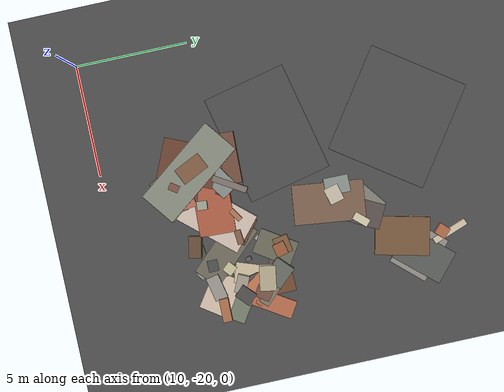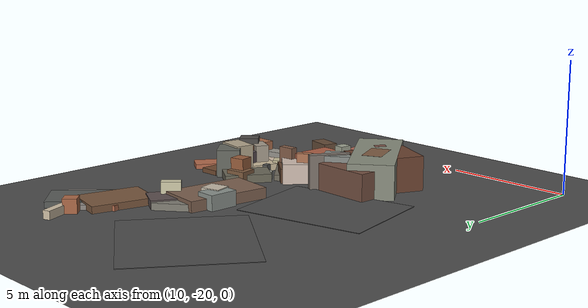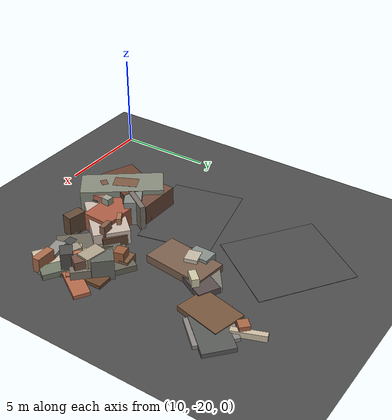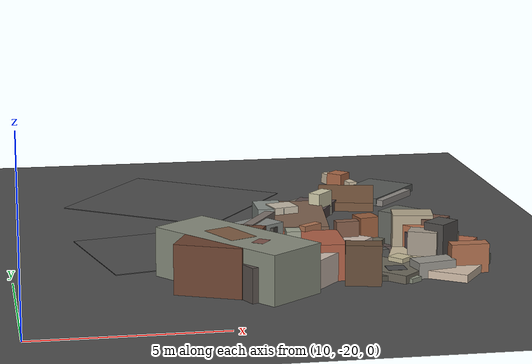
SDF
<sdf version="1.6">
 <world name="navitas_arena">
  <model name="ground_plane">
   <static>true</static>
   <link name="link">
    <collision name="collision">
     <geometry><plane><normal>0 0 1</normal><size>400 400</size></plane></geometry>
     <surface><friction><ode><mu>0.800</mu><mu2>0.800</mu2></ode></friction></surface>
    </collision>
    <visual name="visual">
     <cast_shadows>false</cast_shadows>
     <geometry><plane><normal>0 0 1</normal><size>400 400</size></plane></geometry>
     <material>
      <specular>0.04 0.04 0.04 1</specular>
      <script>
       <uri>file://media/materials/scripts/navitas_asphalt.material</uri>
       <name>Navitas/RealArenaAsphalt</name>
      </script>
     </material>
    </visual>
   </link>
  </model>
  <model name="road_orta_3_7">
   <static>true</static>
   <pose>14.708 -12.340 0.040 0 0 1.793</pose>
   <link name="link">
    <collision name="col"><geometry><box><size>3.812 5.000 0.020</size></box></geometry></collision>
    <visual name="vis">
     <geometry><box><size>3.812 5.000 0.020</size></box></geometry>
     <material>
      <specular>0.04 0.04 0.04 1</specular>
      <script>
       <uri>file://media/materials/scripts/navitas_asphalt.material</uri>
       <name>Navitas/RealArenaAsphalt</name>
      </script>
     </material>
    </visual>
   </link>
  </model>
  <model name="road_orta_3_9">
   <static>true</static>
   <pose>15.219 -6.500 0.040 0 0 0.958</pose>
   <link name="link">
    <collision name="col"><geometry><box><size>4.567 5.000 0.020</size></box></geometry></collision>
    <visual name="vis">
     <geometry><box><size>4.567 5.000 0.020</size></box></geometry>
     <material>
      <specular>0.04 0.04 0.04 1</specular>
      <script>
       <uri>file://media/materials/scripts/navitas_asphalt.material</uri>
       <name>Navitas/RealArenaAsphalt</name>
      </script>
     </material>
    </visual>
   </link>
  </model>
  <model name="blk_orta_3_0_2">
   <static>true</static>
   <pose>16.926 -15.638 0.000 0 0 0</pose>
   <link name="link">
    <collision name="col_0">
     <pose>-0.548 0.867 0.653 0.000 0.000 0.588</pose>
     <geometry><box><size>1.275 0.865 1.306</size></box></geometry>
    </collision>
    <visual name="vis_0">
     <pose>-0.548 0.867 0.653 0.000 0.000 0.588</pose>
     <geometry><box><size>1.275 0.865 1.306</size></box></geometry>
     <material>
      <ambient>0.49 0.51 0.49 1</ambient>
      <diffuse>0.53 0.55 0.53 1</diffuse>
      <specular>0.05 0.05 0.045 1</specular>
     </material>
    </visual>
    <collision name="col_1">
     <pose>-0.817 -1.141 0.515 0.000 0.000 2.021</pose>
     <geometry><box><size>0.739 1.027 1.031</size></box></geometry>
    </collision>
    <visual name="vis_1">
     <pose>-0.817 -1.141 0.515 0.000 0.000 2.021</pose>
     <geometry><box><size>0.739 1.027 1.031</size></box></geometry>
     <material>
      <ambient>0.48 0.35 0.28 1</ambient>
      <diffuse>0.52 0.38 0.30 1</diffuse>
      <specular>0.05 0.05 0.045 1</specular>
     </material>
    </visual>
    <collision name="col_2">
     <pose>-0.630 -0.840 0.496 0.000 0.000 1.317</pose>
     <geometry><box><size>1.408 1.413 0.992</size></box></geometry>
    </collision>
    <visual name="vis_2">
     <pose>-0.630 -0.840 0.496 0.000 0.000 1.317</pose>
     <geometry><box><size>1.408 1.413 0.992</size></box></geometry>
     <material>
      <ambient>0.38 0.25 0.20 1</ambient>
      <diffuse>0.41 0.27 0.22 1</diffuse>
      <specular>0.05 0.05 0.045 1</specular>
     </material>
    </visual>
    <collision name="col_3">
     <pose>-0.451 1.106 0.372 0.000 0.000 2.256</pose>
     <geometry><box><size>1.474 0.454 0.744</size></box></geometry>
    </collision>
    <visual name="vis_3">
     <pose>-0.451 1.106 0.372 0.000 0.000 2.256</pose>
     <geometry><box><size>1.474 0.454 0.744</size></box></geometry>
     <material>
      <ambient>0.62 0.39 0.24 1</ambient>
      <diffuse>0.67 0.42 0.26 1</diffuse>
      <specular>0.05 0.05 0.045 1</specular>
     </material>
    </visual>
    <collision name="col_4">
     <pose>-0.355 1.244 0.673 0.000 0.000 1.026</pose>
     <geometry><box><size>1.581 0.274 1.347</size></box></geometry>
    </collision>
    <visual name="vis_4">
     <pose>-0.355 1.244 0.673 0.000 0.000 1.026</pose>
     <geometry><box><size>1.581 0.274 1.347</size></box></geometry>
     <material>
      <ambient>0.45 0.42 0.39 1</ambient>
      <diffuse>0.49 0.45 0.42 1</diffuse>
      <specular>0.05 0.05 0.045 1</specular>
     </material>
    </visual>
    <collision name="col_5">
     <pose>-0.223 -1.128 0.583 0.000 0.000 1.706</pose>
     <geometry><box><size>1.402 1.178 1.166</size></box></geometry>
    </collision>
    <visual name="vis_5">
     <pose>-0.223 -1.128 0.583 0.000 0.000 1.706</pose>
     <geometry><box><size>1.402 1.178 1.166</size></box></geometry>
     <material>
      <ambient>0.66 0.39 0.32 1</ambient>
      <diffuse>0.71 0.42 0.35 1</diffuse>
      <specular>0.05 0.05 0.045 1</specular>
     </material>
    </visual>
    <collision name="col_6">
     <pose>-1.044 -0.301 0.460 0.000 0.000 1.977</pose>
     <geometry><box><size>3.488 1.645 0.919</size></box></geometry>
    </collision>
    <visual name="vis_6">
     <pose>-1.044 -0.301 0.460 0.000 0.000 1.977</pose>
     <geometry><box><size>3.488 1.645 0.919</size></box></geometry>
     <material>
      <ambient>0.32 0.30 0.28 1</ambient>
      <diffuse>0.35 0.32 0.30 1</diffuse>
      <specular>0.05 0.05 0.045 1</specular>
     </material>
    </visual>
   </link>
  </model>
  <model name="blk_orta_3_0_5">
   <static>true</static>
   <pose>15.720 -16.504 0.000 0 0 0</pose>
   <link name="link">
    <collision name="col_0">
     <pose>-0.153 0.627 0.665 0.000 0.000 2.016</pose>
     <geometry><box><size>1.266 0.770 1.329</size></box></geometry>
    </collision>
    <visual name="vis_0">
     <pose>-0.153 0.627 0.665 0.000 0.000 2.016</pose>
     <geometry><box><size>1.266 0.770 1.329</size></box></geometry>
     <material>
      <ambient>0.47 0.34 0.24 1</ambient>
      <diffuse>0.50 0.36 0.26 1</diffuse>
      <specular>0.05 0.05 0.045 1</specular>
     </material>
    </visual>
    <collision name="col_1">
     <pose>-0.009 0.490 0.663 0.000 0.000 2.221</pose>
     <geometry><box><size>4.235 1.729 1.326</size></box></geometry>
    </collision>
    <visual name="vis_1">
     <pose>-0.009 0.490 0.663 0.000 0.000 2.221</pose>
     <geometry><box><size>4.235 1.729 1.326</size></box></geometry>
     <material>
      <ambient>0.49 0.51 0.46 1</ambient>
      <diffuse>0.53 0.55 0.49 1</diffuse>
      <specular>0.05 0.05 0.045 1</specular>
     </material>
    </visual>
    <collision name="col_2">
     <pose>-0.423 0.547 0.662 0.000 0.000 2.727</pose>
     <geometry><box><size>1.799 2.475 1.325</size></box></geometry>
    </collision>
    <visual name="vis_2">
     <pose>-0.423 0.547 0.662 0.000 0.000 2.727</pose>
     <geometry><box><size>1.799 2.475 1.325</size></box></geometry>
     <material>
      <ambient>0.39 0.24 0.18 1</ambient>
      <diffuse>0.42 0.26 0.19 1</diffuse>
      <specular>0.05 0.05 0.045 1</specular>
     </material>
    </visual>
    <collision name="col_3">
     <pose>0.696 0.035 0.318 0.000 0.000 4.317</pose>
     <geometry><box><size>0.623 0.458 0.636</size></box></geometry>
    </collision>
    <visual name="vis_3">
     <pose>0.696 0.035 0.318 0.000 0.000 4.317</pose>
     <geometry><box><size>0.623 0.458 0.636</size></box></geometry>
     <material>
      <ambient>0.47 0.47 0.48 1</ambient>
      <diffuse>0.50 0.51 0.51 1</diffuse>
      <specular>0.05 0.05 0.045 1</specular>
     </material>
    </visual>
    <collision name="col_4">
     <pose>0.493 -0.285 0.664 0.000 0.000 4.094</pose>
     <geometry><box><size>0.455 0.323 1.328</size></box></geometry>
    </collision>
    <visual name="vis_4">
     <pose>0.493 -0.285 0.664 0.000 0.000 4.094</pose>
     <geometry><box><size>0.455 0.323 1.328</size></box></geometry>
     <material>
      <ambient>0.45 0.31 0.27 1</ambient>
      <diffuse>0.49 0.33 0.29 1</diffuse>
      <specular>0.05 0.05 0.045 1</specular>
     </material>
    </visual>
    <collision name="col_5">
     <pose>0.847 -0.468 0.446 0.000 0.000 3.252</pose>
     <geometry><box><size>1.539 0.956 0.893</size></box></geometry>
    </collision>
    <visual name="vis_5">
     <pose>0.847 -0.468 0.446 0.000 0.000 3.252</pose>
     <geometry><box><size>1.539 0.956 0.893</size></box></geometry>
     <material>
      <ambient>0.36 0.37 0.33 1</ambient>
      <diffuse>0.39 0.40 0.36 1</diffuse>
      <specular>0.05 0.05 0.045 1</specular>
     </material>
    </visual>
   </link>
  </model>
  <model name="blk_orta_3_0_6">
   <static>true</static>
   <pose>15.686 -15.760 0.000 0 0 0</pose>
   <link name="link">
    <collision name="col_0">
     <pose>0.771 1.479 0.359 0.000 0.000 1.838</pose>
     <geometry><box><size>0.319 0.491 0.719</size></box></geometry>
    </collision>
    <visual name="vis_0">
     <pose>0.771 1.479 0.359 0.000 0.000 1.838</pose>
     <geometry><box><size>0.319 0.491 0.719</size></box></geometry>
     <material>
      <ambient>0.62 0.40 0.26 1</ambient>
      <diffuse>0.67 0.43 0.29 1</diffuse>
      <specular>0.05 0.05 0.045 1</specular>
     </material>
    </visual>
    <collision name="col_1">
     <pose>1.046 0.483 0.489 0.000 0.000 -0.042</pose>
     <geometry><box><size>3.778 1.592 0.978</size></box></geometry>
    </collision>
    <visual name="vis_1">
     <pose>1.046 0.483 0.489 0.000 0.000 -0.042</pose>
     <geometry><box><size>3.778 1.592 0.978</size></box></geometry>
     <material>
      <ambient>0.63 0.34 0.25 1</ambient>
      <diffuse>0.68 0.37 0.27 1</diffuse>
      <specular>0.05 0.05 0.045 1</specular>
     </material>
    </visual>
    <collision name="col_2">
     <pose>-0.683 0.019 0.367 0.000 0.000 1.710</pose>
     <geometry><box><size>0.488 0.272 0.733</size></box></geometry>
    </collision>
    <visual name="vis_2">
     <pose>-0.683 0.019 0.367 0.000 0.000 1.710</pose>
     <geometry><box><size>0.488 0.272 0.733</size></box></geometry>
     <material>
      <ambient>0.56 0.53 0.51 1</ambient>
      <diffuse>0.60 0.57 0.55 1</diffuse>
      <specular>0.05 0.05 0.045 1</specular>
     </material>
    </visual>
    <collision name="col_3">
     <pose>0.977 0.990 0.608 0.000 0.000 -0.602</pose>
     <geometry><box><size>0.659 0.326 1.217</size></box></geometry>
    </collision>
    <visual name="vis_3">
     <pose>0.977 0.990 0.608 0.000 0.000 -0.602</pose>
     <geometry><box><size>0.659 0.326 1.217</size></box></geometry>
     <material>
      <ambient>0.29 0.28 0.26 1</ambient>
      <diffuse>0.31 0.30 0.28 1</diffuse>
      <specular>0.05 0.05 0.045 1</specular>
     </material>
    </visual>
    <collision name="col_4">
     <pose>-0.012 1.027 0.380 0.000 0.000 1.140</pose>
     <geometry><box><size>0.426 0.523 0.759</size></box></geometry>
    </collision>
    <visual name="vis_4">
     <pose>-0.012 1.027 0.380 0.000 0.000 1.140</pose>
     <geometry><box><size>0.426 0.523 0.759</size></box></geometry>
     <material>
      <ambient>0.74 0.73 0.63 1</ambient>
      <diffuse>0.80 0.79 0.68 1</diffuse>
      <specular>0.05 0.05 0.045 1</specular>
     </material>
    </visual>
    <collision name="col_5">
     <pose>1.542 -0.008 0.667 0.000 0.000 -0.076</pose>
     <geometry><box><size>0.383 0.451 1.333</size></box></geometry>
    </collision>
    <visual name="vis_5">
     <pose>1.542 -0.008 0.667 0.000 0.000 -0.076</pose>
     <geometry><box><size>0.383 0.451 1.333</size></box></geometry>
     <material>
      <ambient>0.57 0.59 0.53 1</ambient>
      <diffuse>0.62 0.64 0.57 1</diffuse>
      <specular>0.05 0.05 0.045 1</specular>
     </material>
    </visual>
    <collision name="col_6">
     <pose>-0.236 1.577 0.540 0.000 0.000 -0.026</pose>
     <geometry><box><size>2.266 0.758 1.080</size></box></geometry>
    </collision>
    <visual name="vis_6">
     <pose>-0.236 1.577 0.540 0.000 0.000 -0.026</pose>
     <geometry><box><size>2.266 0.758 1.080</size></box></geometry>
     <material>
      <ambient>0.41 0.29 0.23 1</ambient>
      <diffuse>0.45 0.31 0.25 1</diffuse>
      <specular>0.05 0.05 0.045 1</specular>
     </material>
    </visual>
    <collision name="col_7">
     <pose>0.163 -0.380 0.316 0.000 0.000 -0.677</pose>
     <geometry><box><size>0.285 0.326 0.632</size></box></geometry>
    </collision>
    <visual name="vis_7">
     <pose>0.163 -0.380 0.316 0.000 0.000 -0.677</pose>
     <geometry><box><size>0.285 0.326 0.632</size></box></geometry>
     <material>
      <ambient>0.49 0.48 0.43 1</ambient>
      <diffuse>0.53 0.52 0.46 1</diffuse>
      <specular>0.05 0.05 0.045 1</specular>
     </material>
    </visual>
   </link>
  </model>
  <model name="blk_orta_3_0_7">
   <static>true</static>
   <pose>17.505 -15.420 0.000 0 0 0</pose>
   <link name="link">
    <collision name="col_0">
     <pose>-1.541 -0.670 0.284 0.000 0.000 1.751</pose>
     <geometry><box><size>1.364 0.430 0.568</size></box></geometry>
    </collision>
    <visual name="vis_0">
     <pose>-1.541 -0.670 0.284 0.000 0.000 1.751</pose>
     <geometry><box><size>1.364 0.430 0.568</size></box></geometry>
     <material>
      <ambient>0.56 0.50 0.49 1</ambient>
      <diffuse>0.61 0.54 0.53 1</diffuse>
      <specular>0.05 0.05 0.045 1</specular>
     </material>
    </visual>
    <collision name="col_1">
     <pose>1.450 -1.059 0.539 0.000 0.000 2.932</pose>
     <geometry><box><size>0.948 0.551 1.078</size></box></geometry>
    </collision>
    <visual name="vis_1">
     <pose>1.450 -1.059 0.539 0.000 0.000 2.932</pose>
     <geometry><box><size>0.948 0.551 1.078</size></box></geometry>
     <material>
      <ambient>0.37 0.28 0.20 1</ambient>
      <diffuse>0.40 0.30 0.22 1</diffuse>
      <specular>0.05 0.05 0.045 1</specular>
     </material>
    </visual>
    <collision name="col_2">
     <pose>0.164 -0.106 0.281 0.000 0.000 0.912</pose>
     <geometry><box><size>3.960 1.230 0.562</size></box></geometry>
    </collision>
    <visual name="vis_2">
     <pose>0.164 -0.106 0.281 0.000 0.000 0.912</pose>
     <geometry><box><size>3.960 1.230 0.562</size></box></geometry>
     <material>
      <ambient>0.37 0.25 0.17 1</ambient>
      <diffuse>0.39 0.27 0.19 1</diffuse>
      <specular>0.05 0.05 0.045 1</specular>
     </material>
    </visual>
    <collision name="col_3">
     <pose>1.425 0.938 0.598 0.000 0.000 1.662</pose>
     <geometry><box><size>0.279 0.624 1.196</size></box></geometry>
    </collision>
    <visual name="vis_3">
     <pose>1.425 0.938 0.598 0.000 0.000 1.662</pose>
     <geometry><box><size>0.279 0.624 1.196</size></box></geometry>
     <material>
      <ambient>0.48 0.34 0.27 1</ambient>
      <diffuse>0.52 0.37 0.29 1</diffuse>
      <specular>0.05 0.05 0.045 1</specular>
     </material>
    </visual>
    <collision name="col_4">
     <pose>0.406 0.140 0.385 0.000 0.000 0.853</pose>
     <geometry><box><size>3.044 1.820 0.771</size></box></geometry>
    </collision>
    <visual name="vis_4">
     <pose>0.406 0.140 0.385 0.000 0.000 0.853</pose>
     <geometry><box><size>3.044 1.820 0.771</size></box></geometry>
     <material>
      <ambient>0.75 0.68 0.64 1</ambient>
      <diffuse>0.81 0.74 0.69 1</diffuse>
      <specular>0.05 0.05 0.045 1</specular>
     </material>
    </visual>
    <collision name="col_5">
     <pose>0.446 0.990 0.562 0.000 0.000 0.578</pose>
     <geometry><box><size>0.600 0.226 1.124</size></box></geometry>
    </collision>
    <visual name="vis_5">
     <pose>0.446 0.990 0.562 0.000 0.000 0.578</pose>
     <geometry><box><size>0.600 0.226 1.124</size></box></geometry>
     <material>
      <ambient>0.64 0.43 0.31 1</ambient>
      <diffuse>0.69 0.46 0.33 1</diffuse>
      <specular>0.05 0.05 0.045 1</specular>
     </material>
    </visual>
   </link>
  </model>
  <model name="deb_orta_31">
   <static>true</static>
   <pose>18.073 -10.130 0.000 0 0 0</pose>
   <link name="link">
    <collision name="col_0">
     <pose>-0.454 0.332 0.291 0.000 0.000 1.561</pose>
     <geometry><box><size>1.106 0.773 0.582</size></box></geometry>
    </collision>
    <visual name="vis_0">
     <pose>-0.454 0.332 0.291 0.000 0.000 1.561</pose>
     <geometry><box><size>1.106 0.773 0.582</size></box></geometry>
     <material>
      <ambient>0.50 0.53 0.51 1</ambient>
      <diffuse>0.54 0.57 0.55 1</diffuse>
      <specular>0.05 0.05 0.045 1</specular>
     </material>
    </visual>
    <collision name="col_1">
     <pose>-0.327 0.429 0.170 0.000 0.000 1.129</pose>
     <geometry><box><size>0.318 0.190 0.340</size></box></geometry>
    </collision>
    <visual name="vis_1">
     <pose>-0.327 0.429 0.170 0.000 0.000 1.129</pose>
     <geometry><box><size>0.318 0.190 0.340</size></box></geometry>
     <material>
      <ambient>0.28 0.27 0.25 1</ambient>
      <diffuse>0.30 0.29 0.27 1</diffuse>
      <specular>0.05 0.05 0.045 1</specular>
     </material>
    </visual>
    <collision name="col_2">
     <pose>-0.081 0.116 0.308 0.000 0.000 3.400</pose>
     <geometry><box><size>0.738 0.655 0.616</size></box></geometry>
    </collision>
    <visual name="vis_2">
     <pose>-0.081 0.116 0.308 0.000 0.000 3.400</pose>
     <geometry><box><size>0.738 0.655 0.616</size></box></geometry>
     <material>
      <ambient>0.71 0.67 0.61 1</ambient>
      <diffuse>0.77 0.73 0.66 1</diffuse>
      <specular>0.05 0.05 0.045 1</specular>
     </material>
    </visual>
    <collision name="col_3">
     <pose>0.219 -0.171 0.207 0.000 0.000 1.451</pose>
     <geometry><box><size>3.187 1.778 0.414</size></box></geometry>
    </collision>
    <visual name="vis_3">
     <pose>0.219 -0.171 0.207 0.000 0.000 1.451</pose>
     <geometry><box><size>3.187 1.778 0.414</size></box></geometry>
     <material>
      <ambient>0.46 0.35 0.29 1</ambient>
      <diffuse>0.49 0.38 0.31 1</diffuse>
      <specular>0.05 0.05 0.045 1</specular>
     </material>
    </visual>
    <collision name="col_4">
     <pose>0.241 0.080 0.116 0.000 0.000 3.396</pose>
     <geometry><box><size>0.252 0.383 0.232</size></box></geometry>
    </collision>
    <visual name="vis_4">
     <pose>0.241 0.080 0.116 0.000 0.000 3.396</pose>
     <geometry><box><size>0.252 0.383 0.232</size></box></geometry>
     <material>
      <ambient>0.54 0.53 0.51 1</ambient>
      <diffuse>0.59 0.57 0.55 1</diffuse>
      <specular>0.05 0.05 0.045 1</specular>
     </material>
    </visual>
   </link>
  </model>
  <model name="deb_orta_67">
   <static>true</static>
   <pose>21.238 -14.525 0.000 0 0 0</pose>
   <link name="link">
    <collision name="col_0">
     <pose>0.571 -0.001 0.067 0.000 0.000 0.414</pose>
     <geometry><box><size>0.467 0.449 0.133</size></box></geometry>
    </collision>
    <visual name="vis_0">
     <pose>0.571 -0.001 0.067 0.000 0.000 0.414</pose>
     <geometry><box><size>0.467 0.449 0.133</size></box></geometry>
     <material>
      <ambient>0.39 0.28 0.22 1</ambient>
      <diffuse>0.42 0.30 0.23 1</diffuse>
      <specular>0.05 0.05 0.045 1</specular>
     </material>
    </visual>
    <collision name="col_1">
     <pose>-0.250 -0.290 0.464 0.000 0.000 1.136</pose>
     <geometry><box><size>0.525 0.792 0.928</size></box></geometry>
    </collision>
    <visual name="vis_1">
     <pose>-0.250 -0.290 0.464 0.000 0.000 1.136</pose>
     <geometry><box><size>0.525 0.792 0.928</size></box></geometry>
     <material>
      <ambient>0.59 0.56 0.50 1</ambient>
      <diffuse>0.64 0.60 0.54 1</diffuse>
      <specular>0.05 0.05 0.045 1</specular>
     </material>
    </visual>
    <collision name="col_2">
     <pose>0.469 -0.352 0.144 0.000 0.000 -0.574</pose>
     <geometry><box><size>2.052 0.765 0.288</size></box></geometry>
    </collision>
    <visual name="vis_2">
     <pose>0.469 -0.352 0.144 0.000 0.000 -0.574</pose>
     <geometry><box><size>2.052 0.765 0.288</size></box></geometry>
     <material>
      <ambient>0.43 0.45 0.39 1</ambient>
      <diffuse>0.46 0.49 0.42 1</diffuse>
      <specular>0.05 0.05 0.045 1</specular>
     </material>
    </visual>
    <collision name="col_3">
     <pose>0.636 0.449 0.097 0.000 0.000 1.007</pose>
     <geometry><box><size>2.958 0.805 0.194</size></box></geometry>
    </collision>
    <visual name="vis_3">
     <pose>0.636 0.449 0.097 0.000 0.000 1.007</pose>
     <geometry><box><size>2.958 0.805 0.194</size></box></geometry>
     <material>
      <ambient>0.66 0.39 0.28 1</ambient>
      <diffuse>0.71 0.42 0.30 1</diffuse>
      <specular>0.05 0.05 0.045 1</specular>
     </material>
    </visual>
    <collision name="col_4">
     <pose>0.305 0.588 0.518 0.000 0.000 0.963</pose>
     <geometry><box><size>0.707 0.566 1.036</size></box></geometry>
    </collision>
    <visual name="vis_4">
     <pose>0.305 0.588 0.518 0.000 0.000 0.963</pose>
     <geometry><box><size>0.707 0.566 1.036</size></box></geometry>
     <material>
      <ambient>0.43 0.30 0.25 1</ambient>
      <diffuse>0.46 0.33 0.27 1</diffuse>
      <specular>0.05 0.05 0.045 1</specular>
     </material>
    </visual>
   </link>
  </model>
  <model name="deb_orta_75">
   <static>true</static>
   <pose>20.028 -15.083 0.000 0 0 0</pose>
   <link name="link">
    <collision name="col_0">
     <pose>0.404 -0.389 0.112 0.000 0.000 3.351</pose>
     <geometry><box><size>0.263 0.421 0.223</size></box></geometry>
    </collision>
    <visual name="vis_0">
     <pose>0.404 -0.389 0.112 0.000 0.000 3.351</pose>
     <geometry><box><size>0.263 0.421 0.223</size></box></geometry>
     <material>
      <ambient>0.34 0.36 0.32 1</ambient>
      <diffuse>0.37 0.39 0.35 1</diffuse>
      <specular>0.05 0.05 0.045 1</specular>
     </material>
    </visual>
    <collision name="col_1">
     <pose>-0.025 0.770 0.167 0.000 0.000 3.361</pose>
     <geometry><box><size>0.215 0.248 0.335</size></box></geometry>
    </collision>
    <visual name="vis_1">
     <pose>-0.025 0.770 0.167 0.000 0.000 3.361</pose>
     <geometry><box><size>0.215 0.248 0.335</size></box></geometry>
     <material>
      <ambient>0.32 0.32 0.32 1</ambient>
      <diffuse>0.35 0.35 0.34 1</diffuse>
      <specular>0.05 0.05 0.045 1</specular>
     </material>
    </visual>
    <collision name="col_2">
     <pose>0.350 0.047 0.089 0.000 0.000 3.565</pose>
     <geometry><box><size>0.382 0.203 0.179</size></box></geometry>
    </collision>
    <visual name="vis_2">
     <pose>0.350 0.047 0.089 0.000 0.000 3.565</pose>
     <geometry><box><size>0.382 0.203 0.179</size></box></geometry>
     <material>
      <ambient>0.71 0.63 0.59 1</ambient>
      <diffuse>0.77 0.69 0.64 1</diffuse>
      <specular>0.05 0.05 0.045 1</specular>
     </material>
    </visual>
    <collision name="col_3">
     <pose>0.218 -0.133 0.172 0.000 0.000 2.282</pose>
     <geometry><box><size>0.473 0.457 0.345</size></box></geometry>
    </collision>
    <visual name="vis_3">
     <pose>0.218 -0.133 0.172 0.000 0.000 2.282</pose>
     <geometry><box><size>0.473 0.457 0.345</size></box></geometry>
     <material>
      <ambient>0.72 0.68 0.56 1</ambient>
      <diffuse>0.78 0.74 0.60 1</diffuse>
      <specular>0.05 0.05 0.045 1</specular>
     </material>
    </visual>
    <collision name="col_4">
     <pose>-0.067 -0.843 0.115 0.000 0.000 3.152</pose>
     <geometry><box><size>0.514 0.459 0.229</size></box></geometry>
    </collision>
    <visual name="vis_4">
     <pose>-0.067 -0.843 0.115 0.000 0.000 3.152</pose>
     <geometry><box><size>0.514 0.459 0.229</size></box></geometry>
     <material>
      <ambient>0.28 0.27 0.28 1</ambient>
      <diffuse>0.30 0.30 0.30 1</diffuse>
      <specular>0.05 0.05 0.045 1</specular>
     </material>
    </visual>
    <collision name="col_5">
     <pose>1.078 0.641 0.353 0.000 0.000 1.771</pose>
     <geometry><box><size>0.929 0.736 0.707</size></box></geometry>
    </collision>
    <visual name="vis_5">
     <pose>1.078 0.641 0.353 0.000 0.000 1.771</pose>
     <geometry><box><size>0.929 0.736 0.707</size></box></geometry>
     <material>
      <ambient>0.34 0.30 0.31 1</ambient>
      <diffuse>0.37 0.32 0.34 1</diffuse>
      <specular>0.05 0.05 0.045 1</specular>
     </material>
    </visual>
    <collision name="col_6">
     <pose>0.920 -0.868 0.216 0.000 0.000 3.356</pose>
     <geometry><box><size>1.084 0.577 0.431</size></box></geometry>
    </collision>
    <visual name="vis_6">
     <pose>0.920 -0.868 0.216 0.000 0.000 3.356</pose>
     <geometry><box><size>1.084 0.577 0.431</size></box></geometry>
     <material>
      <ambient>0.54 0.53 0.51 1</ambient>
      <diffuse>0.59 0.58 0.55 1</diffuse>
      <specular>0.05 0.05 0.045 1</specular>
     </material>
    </visual>
   </link>
  </model>
  <model name="deb_orta_107">
   <static>true</static>
   <pose>19.085 -8.805 0.000 0 0 0</pose>
   <link name="link">
    <collision name="col_0">
     <pose>0.239 -0.267 0.375 0.000 0.000 0.842</pose>
     <geometry><box><size>0.728 0.360 0.750</size></box></geometry>
    </collision>
    <visual name="vis_0">
     <pose>0.239 -0.267 0.375 0.000 0.000 0.842</pose>
     <geometry><box><size>0.728 0.360 0.750</size></box></geometry>
     <material>
      <ambient>0.75 0.73 0.61 1</ambient>
      <diffuse>0.81 0.79 0.66 1</diffuse>
      <specular>0.05 0.05 0.045 1</specular>
     </material>
    </visual>
    <collision name="col_1">
     <pose>0.143 -0.120 0.071 0.000 0.000 2.068</pose>
     <geometry><box><size>0.222 0.478 0.142</size></box></geometry>
    </collision>
    <visual name="vis_1">
     <pose>0.143 -0.120 0.071 0.000 0.000 2.068</pose>
     <geometry><box><size>0.222 0.478 0.142</size></box></geometry>
     <material>
      <ambient>0.49 0.50 0.48 1</ambient>
      <diffuse>0.53 0.54 0.52 1</diffuse>
      <specular>0.05 0.05 0.045 1</specular>
     </material>
    </visual>
    <collision name="col_2">
     <pose>0.099 -0.051 0.083 0.000 0.000 2.092</pose>
     <geometry><box><size>0.383 0.455 0.165</size></box></geometry>
    </collision>
    <visual name="vis_2">
     <pose>0.099 -0.051 0.083 0.000 0.000 2.092</pose>
     <geometry><box><size>0.383 0.455 0.165</size></box></geometry>
     <material>
      <ambient>0.61 0.57 0.52 1</ambient>
      <diffuse>0.66 0.62 0.57 1</diffuse>
      <specular>0.05 0.05 0.045 1</specular>
     </material>
    </visual>
    <collision name="col_3">
     <pose>-0.246 -0.493 0.158 0.000 0.000 1.092</pose>
     <geometry><box><size>2.651 1.134 0.316</size></box></geometry>
    </collision>
    <visual name="vis_3">
     <pose>-0.246 -0.493 0.158 0.000 0.000 1.092</pose>
     <geometry><box><size>2.651 1.134 0.316</size></box></geometry>
     <material>
      <ambient>0.34 0.29 0.29 1</ambient>
      <diffuse>0.36 0.31 0.31 1</diffuse>
      <specular>0.05 0.05 0.045 1</specular>
     </material>
    </visual>
    <collision name="col_4">
     <pose>-0.360 -0.008 0.131 0.000 0.000 2.224</pose>
     <geometry><box><size>1.410 1.433 0.261</size></box></geometry>
    </collision>
    <visual name="vis_4">
     <pose>-0.360 -0.008 0.131 0.000 0.000 2.224</pose>
     <geometry><box><size>1.410 1.433 0.261</size></box></geometry>
     <material>
      <ambient>0.46 0.45 0.42 1</ambient>
      <diffuse>0.50 0.49 0.45 1</diffuse>
      <specular>0.05 0.05 0.045 1</specular>
     </material>
    </visual>
   </link>
  </model>
  <model name="deb_orta_112">
   <static>true</static>
   <pose>19.779 -12.897 0.000 0 0 0</pose>
   <link name="link">
    <collision name="col_0">
     <pose>-0.074 -0.384 0.159 0.000 0.000 0.690</pose>
     <geometry><box><size>1.585 0.241 0.317</size></box></geometry>
    </collision>
    <visual name="vis_0">
     <pose>-0.074 -0.384 0.159 0.000 0.000 0.690</pose>
     <geometry><box><size>1.585 0.241 0.317</size></box></geometry>
     <material>
      <ambient>0.60 0.60 0.55 1</ambient>
      <diffuse>0.65 0.65 0.60 1</diffuse>
      <specular>0.05 0.05 0.045 1</specular>
     </material>
    </visual>
    <collision name="col_1">
     <pose>-0.074 0.193 0.234 0.000 0.000 3.309</pose>
     <geometry><box><size>0.787 0.674 0.468</size></box></geometry>
    </collision>
    <visual name="vis_1">
     <pose>-0.074 0.193 0.234 0.000 0.000 3.309</pose>
     <geometry><box><size>0.787 0.674 0.468</size></box></geometry>
     <material>
      <ambient>0.46 0.33 0.23 1</ambient>
      <diffuse>0.50 0.36 0.25 1</diffuse>
      <specular>0.05 0.05 0.045 1</specular>
     </material>
    </visual>
    <collision name="col_2">
     <pose>0.467 -0.403 0.084 0.000 0.000 2.871</pose>
     <geometry><box><size>0.506 0.281 0.167</size></box></geometry>
    </collision>
    <visual name="vis_2">
     <pose>0.467 -0.403 0.084 0.000 0.000 2.871</pose>
     <geometry><box><size>0.506 0.281 0.167</size></box></geometry>
     <material>
      <ambient>0.34 0.30 0.29 1</ambient>
      <diffuse>0.37 0.32 0.31 1</diffuse>
      <specular>0.05 0.05 0.045 1</specular>
     </material>
    </visual>
    <collision name="col_3">
     <pose>0.060 0.059 0.451 0.000 0.000 3.372</pose>
     <geometry><box><size>0.568 0.535 0.903</size></box></geometry>
    </collision>
    <visual name="vis_3">
     <pose>0.060 0.059 0.451 0.000 0.000 3.372</pose>
     <geometry><box><size>0.568 0.535 0.903</size></box></geometry>
     <material>
      <ambient>0.56 0.34 0.22 1</ambient>
      <diffuse>0.60 0.37 0.24 1</diffuse>
      <specular>0.05 0.05 0.045 1</specular>
     </material>
    </visual>
    <collision name="col_4">
     <pose>-0.037 -0.140 0.159 0.000 0.000 0.992</pose>
     <geometry><box><size>1.787 1.128 0.319</size></box></geometry>
    </collision>
    <visual name="vis_4">
     <pose>-0.037 -0.140 0.159 0.000 0.000 0.992</pose>
     <geometry><box><size>1.787 1.128 0.319</size></box></geometry>
     <material>
      <ambient>0.39 0.38 0.32 1</ambient>
      <diffuse>0.42 0.41 0.35 1</diffuse>
      <specular>0.05 0.05 0.045 1</specular>
     </material>
    </visual>
    <collision name="col_5">
     <pose>0.379 0.156 0.124 0.000 0.000 2.859</pose>
     <geometry><box><size>1.470 0.302 0.248</size></box></geometry>
    </collision>
    <visual name="vis_5">
     <pose>0.379 0.156 0.124 0.000 0.000 2.859</pose>
     <geometry><box><size>1.470 0.302 0.248</size></box></geometry>
     <material>
      <ambient>0.64 0.39 0.27 1</ambient>
      <diffuse>0.70 0.42 0.29 1</diffuse>
      <specular>0.05 0.05 0.045 1</specular>
     </material>
    </visual>
   </link>
  </model>
  <model name="deb_orta_123">
   <static>true</static>
   <pose>19.470 -15.841 0.000 0 0 0</pose>
   <link name="link">
    <collision name="col_0">
     <pose>0.272 -0.371 0.069 0.000 0.000 0.113</pose>
     <geometry><box><size>1.575 0.260 0.139</size></box></geometry>
    </collision>
    <visual name="vis_0">
     <pose>0.272 -0.371 0.069 0.000 0.000 0.113</pose>
     <geometry><box><size>1.575 0.260 0.139</size></box></geometry>
     <material>
      <ambient>0.30 0.30 0.25 1</ambient>
      <diffuse>0.33 0.32 0.28 1</diffuse>
      <specular>0.05 0.05 0.045 1</specular>
     </material>
    </visual>
    <collision name="col_1">
     <pose>0.739 -0.577 0.063 0.000 0.000 2.213</pose>
     <geometry><box><size>0.484 0.380 0.127</size></box></geometry>
    </collision>
    <visual name="vis_1">
     <pose>0.739 -0.577 0.063 0.000 0.000 2.213</pose>
     <geometry><box><size>0.484 0.380 0.127</size></box></geometry>
     <material>
      <ambient>0.52 0.54 0.48 1</ambient>
      <diffuse>0.56 0.58 0.51 1</diffuse>
      <specular>0.05 0.05 0.045 1</specular>
     </material>
    </visual>
    <collision name="col_2">
     <pose>-0.031 0.633 0.112 0.000 0.000 2.328</pose>
     <geometry><box><size>3.056 1.273 0.224</size></box></geometry>
    </collision>
    <visual name="vis_2">
     <pose>-0.031 0.633 0.112 0.000 0.000 2.328</pose>
     <geometry><box><size>3.056 1.273 0.224</size></box></geometry>
     <material>
      <ambient>0.40 0.38 0.33 1</ambient>
      <diffuse>0.43 0.41 0.36 1</diffuse>
      <specular>0.05 0.05 0.045 1</specular>
     </material>
    </visual>
    <collision name="col_3">
     <pose>0.103 0.530 0.104 0.000 0.000 2.595</pose>
     <geometry><box><size>0.319 0.207 0.209</size></box></geometry>
    </collision>
    <visual name="vis_3">
     <pose>0.103 0.530 0.104 0.000 0.000 2.595</pose>
     <geometry><box><size>0.319 0.207 0.209</size></box></geometry>
     <material>
      <ambient>0.30 0.29 0.26 1</ambient>
      <diffuse>0.32 0.32 0.28 1</diffuse>
      <specular>0.05 0.05 0.045 1</specular>
     </material>
    </visual>
   </link>
  </model>
  <model name="deb_orta_188">
   <static>true</static>
   <pose>20.884 -13.667 0.000 0 0 0</pose>
   <link name="link">
    <collision name="col_0">
     <pose>0.069 0.026 0.569 0.000 0.000 -0.166</pose>
     <geometry><box><size>1.103 0.724 1.138</size></box></geometry>
    </collision>
    <visual name="vis_0">
     <pose>0.069 0.026 0.569 0.000 0.000 -0.166</pose>
     <geometry><box><size>1.103 0.724 1.138</size></box></geometry>
     <material>
      <ambient>0.65 0.61 0.51 1</ambient>
      <diffuse>0.70 0.65 0.55 1</diffuse>
      <specular>0.05 0.05 0.045 1</specular>
     </material>
    </visual>
    <collision name="col_1">
     <pose>0.840 -0.055 0.306 0.000 0.000 0.774</pose>
     <geometry><box><size>0.467 0.955 0.612</size></box></geometry>
    </collision>
    <visual name="vis_1">
     <pose>0.840 -0.055 0.306 0.000 0.000 0.774</pose>
     <geometry><box><size>0.467 0.955 0.612</size></box></geometry>
     <material>
      <ambient>0.44 0.43 0.38 1</ambient>
      <diffuse>0.48 0.46 0.41 1</diffuse>
      <specular>0.05 0.05 0.045 1</specular>
     </material>
    </visual>
    <collision name="col_2">
     <pose>0.435 0.174 0.133 0.000 0.000 2.306</pose>
     <geometry><box><size>2.231 0.297 0.266</size></box></geometry>
    </collision>
    <visual name="vis_2">
     <pose>0.435 0.174 0.133 0.000 0.000 2.306</pose>
     <geometry><box><size>2.231 0.297 0.266</size></box></geometry>
     <material>
      <ambient>0.62 0.38 0.26 1</ambient>
      <diffuse>0.67 0.41 0.28 1</diffuse>
      <specular>0.05 0.05 0.045 1</specular>
     </material>
    </visual>
    <collision name="col_3">
     <pose>0.295 -0.618 0.440 0.000 0.000 2.149</pose>
     <geometry><box><size>1.147 0.581 0.880</size></box></geometry>
    </collision>
    <visual name="vis_3">
     <pose>0.295 -0.618 0.440 0.000 0.000 2.149</pose>
     <geometry><box><size>1.147 0.581 0.880</size></box></geometry>
     <material>
      <ambient>0.68 0.43 0.30 1</ambient>
      <diffuse>0.74 0.46 0.32 1</diffuse>
      <specular>0.05 0.05 0.045 1</specular>
     </material>
    </visual>
    <collision name="col_4">
     <pose>-0.146 -0.526 0.134 0.000 0.000 1.238</pose>
     <geometry><box><size>1.770 0.925 0.267</size></box></geometry>
    </collision>
    <visual name="vis_4">
     <pose>-0.146 -0.526 0.134 0.000 0.000 1.238</pose>
     <geometry><box><size>1.770 0.925 0.267</size></box></geometry>
     <material>
      <ambient>0.73 0.68 0.57 1</ambient>
      <diffuse>0.79 0.73 0.61 1</diffuse>
      <specular>0.05 0.05 0.045 1</specular>
     </material>
    </visual>
    <collision name="col_5">
     <pose>0.557 0.087 0.091 0.000 0.000 1.598</pose>
     <geometry><box><size>2.089 0.773 0.183</size></box></geometry>
    </collision>
    <visual name="vis_5">
     <pose>0.557 0.087 0.091 0.000 0.000 1.598</pose>
     <geometry><box><size>2.089 0.773 0.183</size></box></geometry>
     <material>
      <ambient>0.40 0.27 0.18 1</ambient>
      <diffuse>0.44 0.29 0.19 1</diffuse>
      <specular>0.05 0.05 0.045 1</specular>
     </material>
    </visual>
    <collision name="col_6">
     <pose>-0.043 0.546 0.535 0.000 0.000 2.319</pose>
     <geometry><box><size>1.062 0.896 1.071</size></box></geometry>
    </collision>
    <visual name="vis_6">
     <pose>-0.043 0.546 0.535 0.000 0.000 2.319</pose>
     <geometry><box><size>1.062 0.896 1.071</size></box></geometry>
     <material>
      <ambient>0.37 0.38 0.35 1</ambient>
      <diffuse>0.40 0.41 0.38 1</diffuse>
      <specular>0.05 0.05 0.045 1</specular>
     </material>
    </visual>
   </link>
  </model>
  <model name="deb_orta_194">
   <static>true</static>
   <pose>20.339 -6.392 0.000 0 0 0</pose>
   <link name="link">
    <collision name="col_0">
     <pose>1.149 -0.268 0.112 0.000 0.000 0.846</pose>
     <geometry><box><size>2.406 1.545 0.224</size></box></geometry>
    </collision>
    <visual name="vis_0">
     <pose>1.149 -0.268 0.112 0.000 0.000 0.846</pose>
     <geometry><box><size>2.406 1.545 0.224</size></box></geometry>
     <material>
      <ambient>0.33 0.34 0.32 1</ambient>
      <diffuse>0.35 0.36 0.35 1</diffuse>
      <specular>0.05 0.05 0.045 1</specular>
     </material>
    </visual>
    <collision name="col_1">
     <pose>-0.423 -0.957 0.102 0.000 0.000 1.811</pose>
     <geometry><box><size>1.220 0.313 0.203</size></box></geometry>
    </collision>
    <visual name="vis_1">
     <pose>-0.423 -0.957 0.102 0.000 0.000 1.811</pose>
     <geometry><box><size>1.220 0.313 0.203</size></box></geometry>
     <material>
      <ambient>0.64 0.39 0.28 1</ambient>
      <diffuse>0.69 0.42 0.30 1</diffuse>
      <specular>0.05 0.05 0.045 1</specular>
     </material>
    </visual>
    <collision name="col_2">
     <pose>0.259 0.734 0.272 0.000 0.000 2.366</pose>
     <geometry><box><size>0.510 0.519 0.545</size></box></geometry>
    </collision>
    <visual name="vis_2">
     <pose>0.259 0.734 0.272 0.000 0.000 2.366</pose>
     <geometry><box><size>0.510 0.519 0.545</size></box></geometry>
     <material>
      <ambient>0.62 0.38 0.26 1</ambient>
      <diffuse>0.67 0.41 0.28 1</diffuse>
      <specular>0.05 0.05 0.045 1</specular>
     </material>
    </visual>
    <collision name="col_3">
     <pose>0.110 -1.026 0.133 0.000 0.000 1.339</pose>
     <geometry><box><size>2.428 1.716 0.266</size></box></geometry>
    </collision>
    <visual name="vis_3">
     <pose>0.110 -1.026 0.133 0.000 0.000 1.339</pose>
     <geometry><box><size>2.428 1.716 0.266</size></box></geometry>
     <material>
      <ambient>0.44 0.31 0.22 1</ambient>
      <diffuse>0.47 0.34 0.24 1</diffuse>
      <specular>0.05 0.05 0.045 1</specular>
     </material>
    </visual>
    <collision name="col_4">
     <pose>0.933 -0.439 0.095 0.000 0.000 2.402</pose>
     <geometry><box><size>2.087 1.796 0.190</size></box></geometry>
    </collision>
    <visual name="vis_4">
     <pose>0.933 -0.439 0.095 0.000 0.000 2.402</pose>
     <geometry><box><size>2.087 1.796 0.190</size></box></geometry>
     <material>
      <ambient>0.51 0.50 0.48 1</ambient>
      <diffuse>0.56 0.54 0.52 1</diffuse>
      <specular>0.05 0.05 0.045 1</specular>
     </material>
    </visual>
    <collision name="col_5">
     <pose>0.355 1.074 0.161 0.000 0.000 1.921</pose>
     <geometry><box><size>1.651 0.281 0.322</size></box></geometry>
    </collision>
    <visual name="vis_5">
     <pose>0.355 1.074 0.161 0.000 0.000 1.921</pose>
     <geometry><box><size>1.651 0.281 0.322</size></box></geometry>
     <material>
      <ambient>0.75 0.69 0.60 1</ambient>
      <diffuse>0.81 0.75 0.65 1</diffuse>
      <specular>0.05 0.05 0.045 1</specular>
     </material>
    </visual>
   </link>
  </model>
  <model name="deb_orta_211">
   <static>true</static>
   <pose>21.704 -15.245 0.000 0 0 0</pose>
   <link name="link">
    <collision name="col_0">
     <pose>0.262 -0.518 0.392 0.000 0.000 3.132</pose>
     <geometry><box><size>1.021 0.406 0.784</size></box></geometry>
    </collision>
    <visual name="vis_0">
     <pose>0.262 -0.518 0.392 0.000 0.000 3.132</pose>
     <geometry><box><size>1.021 0.406 0.784</size></box></geometry>
     <material>
      <ambient>0.62 0.40 0.28 1</ambient>
      <diffuse>0.67 0.43 0.30 1</diffuse>
      <specular>0.05 0.05 0.045 1</specular>
     </material>
    </visual>
    <collision name="col_1">
     <pose>-0.359 -0.488 0.107 0.000 0.000 0.968</pose>
     <geometry><box><size>1.612 1.797 0.213</size></box></geometry>
    </collision>
    <visual name="vis_1">
     <pose>-0.359 -0.488 0.107 0.000 0.000 0.968</pose>
     <geometry><box><size>1.612 1.797 0.213</size></box></geometry>
     <material>
      <ambient>0.76 0.69 0.61 1</ambient>
      <diffuse>0.82 0.74 0.66 1</diffuse>
      <specular>0.05 0.05 0.045 1</specular>
     </material>
    </visual>
    <collision name="col_2">
     <pose>-0.223 0.520 0.569 0.000 0.000 2.333</pose>
     <geometry><box><size>0.600 0.753 1.138</size></box></geometry>
    </collision>
    <visual name="vis_2">
     <pose>-0.223 0.520 0.569 0.000 0.000 2.333</pose>
     <geometry><box><size>0.600 0.753 1.138</size></box></geometry>
     <material>
      <ambient>0.29 0.28 0.27 1</ambient>
      <diffuse>0.31 0.30 0.29 1</diffuse>
      <specular>0.05 0.05 0.045 1</specular>
     </material>
    </visual>
    <collision name="col_3">
     <pose>0.059 -0.124 0.089 0.000 0.000 1.843</pose>
     <geometry><box><size>0.210 0.261 0.179</size></box></geometry>
    </collision>
    <visual name="vis_3">
     <pose>0.059 -0.124 0.089 0.000 0.000 1.843</pose>
     <geometry><box><size>0.210 0.261 0.179</size></box></geometry>
     <material>
      <ambient>0.47 0.47 0.44 1</ambient>
      <diffuse>0.51 0.51 0.47 1</diffuse>
      <specular>0.05 0.05 0.045 1</specular>
     </material>
    </visual>
   </link>
  </model>
 </world>
</sdf>
